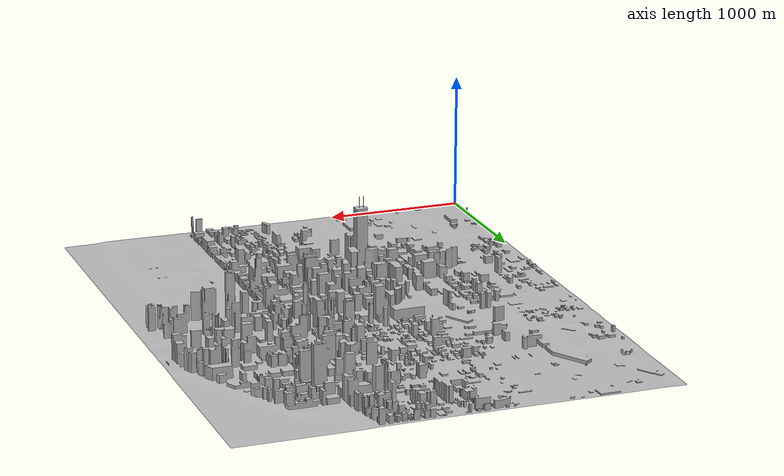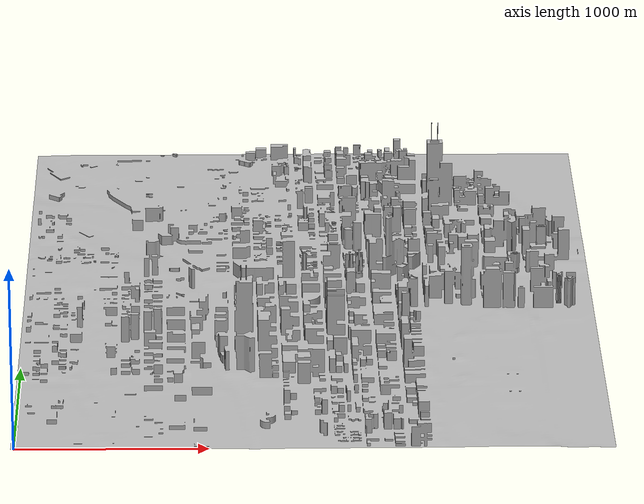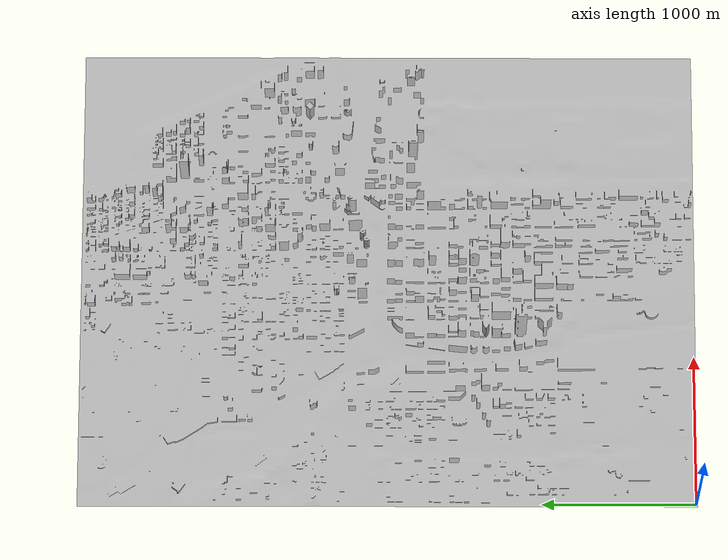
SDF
<?xml version="1.0" ?>
<sdf version="1.5">
  <model name="Chicago">
    <static>true</static>
    <pose>0 0 0 0 0 0</pose>
    <link name="buildings">
      <collision name="collision">
        <geometry>
          <mesh>
            <uri>/home/arms/Downloads/HybridAerialVehicle/Chicago_12km.stl</uri>
            <scale> 1000 1000 1000 </scale>
          </mesh>
        </geometry>
      </collision>
      <visual name="visual">
        <geometry>
          <mesh>
            <uri>/home/arms/Downloads/HybridAerialVehicle/Chicago_12km.stl</uri>
            <scale> 1000 1000 1000 </scale>
          </mesh>
        </geometry>
        <cast_shadows>false</cast_shadows>
      </visual>
    </link>
  </model>
</sdf>
